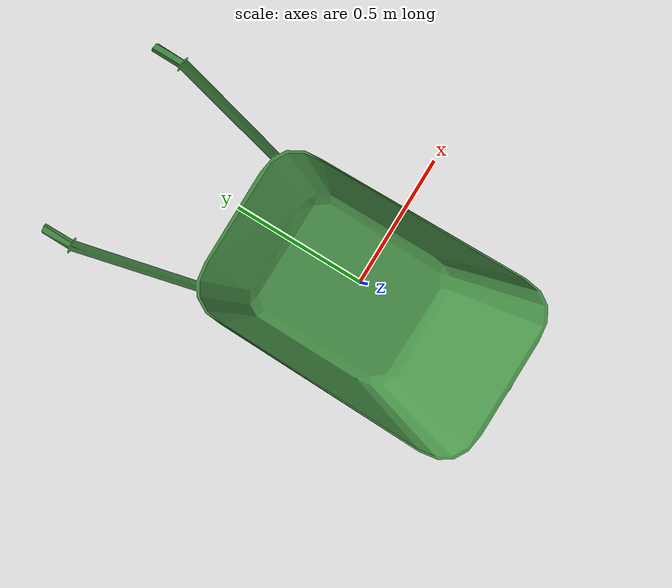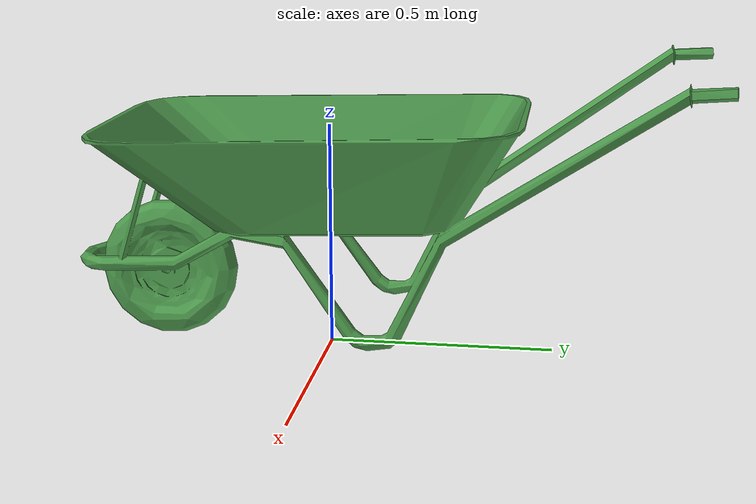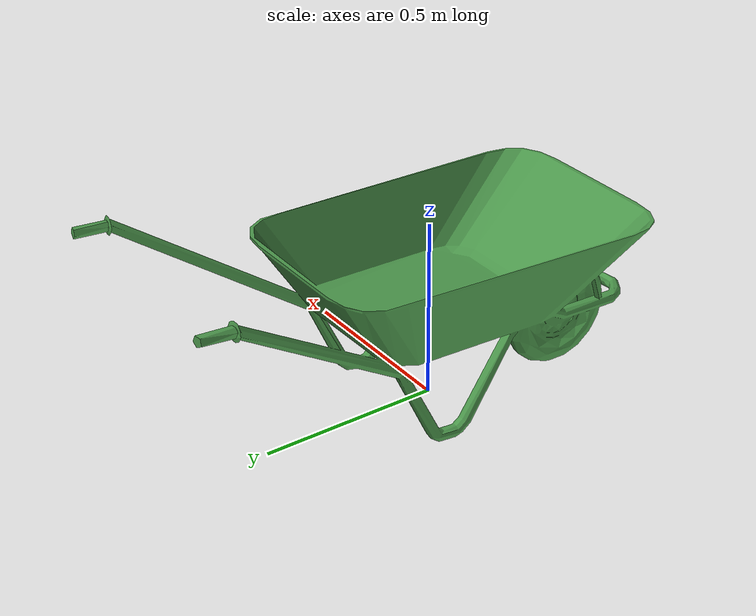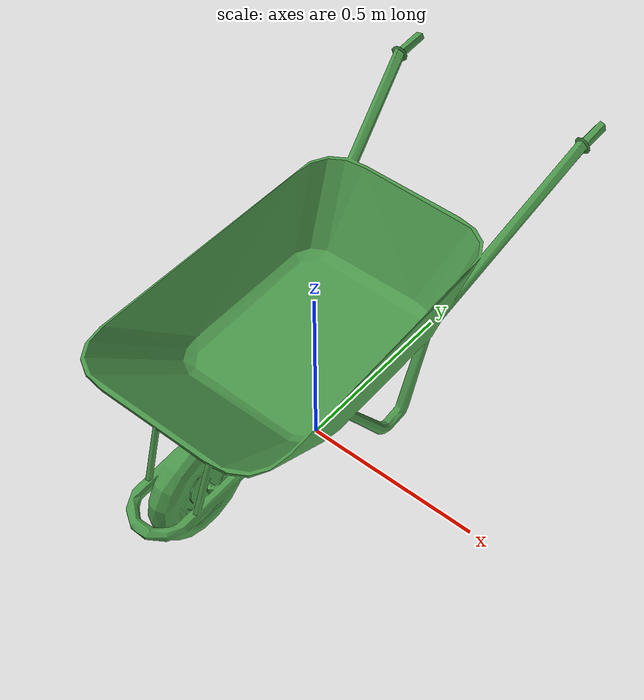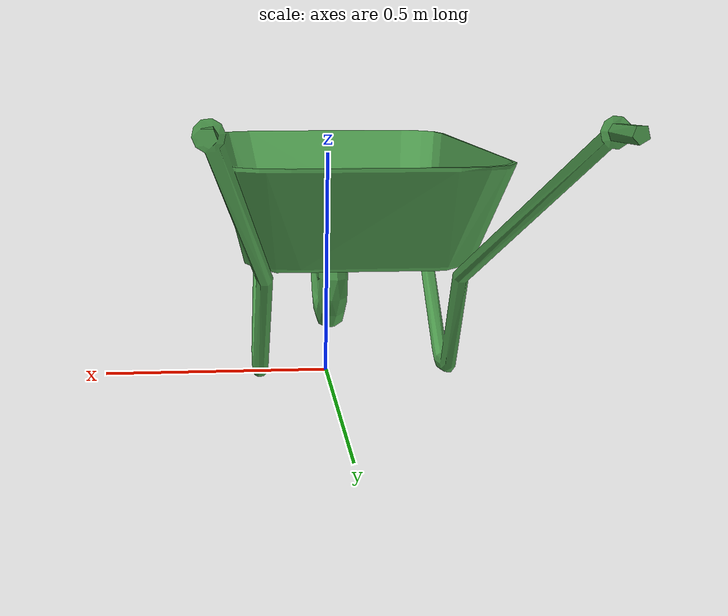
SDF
<?xml version='1.0'?>
<sdf version='1.6'>
  <model name='wheelbarrow'>
    <link name='link_1'>
      <pose frame=''>-0.00034 0 0 1.570508 -0 0</pose>
      <visual name='visual'>
        <geometry>
          <mesh>
            <uri>model://10-wheelbarrow/wheelbarrow.obj</uri>
            <scale>2 2 2</scale>
          </mesh>
        </geometry>
        <material>
          <lighting>1</lighting>
          <ambient>0.2 0.4 0.2 1</ambient>  <!-- A darker green ambient -->
          <diffuse>0.3 0.6 0.3 1</diffuse>  <!-- A medium green for diffuse lighting -->
          <specular>0.2 0.5 0.2 1</specular>  <!-- Modify specular for shininess in green -->
          <emissive>0 0 0 1</emissive>
        </material>
        <cast_shadows>1</cast_shadows>
        <transparency>0</transparency>
      </visual>
      <collision name='collision'>
        <laser_retro>0</laser_retro>
        <max_contacts>10</max_contacts>
        <geometry>
          <mesh>
            <uri>model://10-wheelbarrow/wheelbarrow.obj</uri>
            <scale>2 2 2</scale>
          </mesh>
        </geometry>
      </collision>
    </link>
    <static>1</static>
    <allow_auto_disable>1</allow_auto_disable>
  </model>
</sdf>
